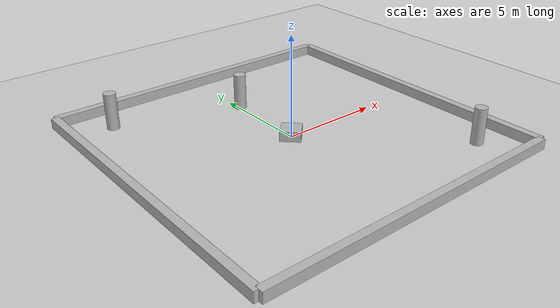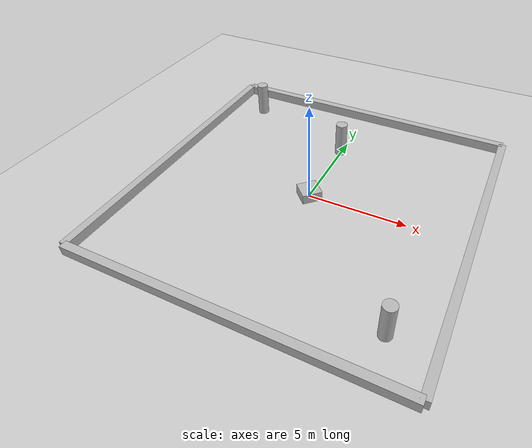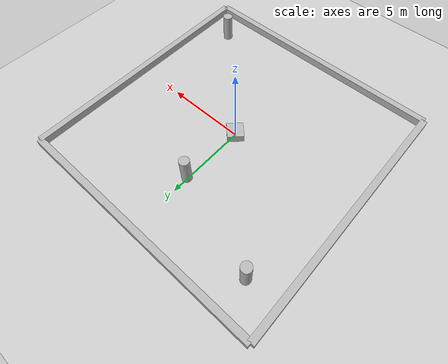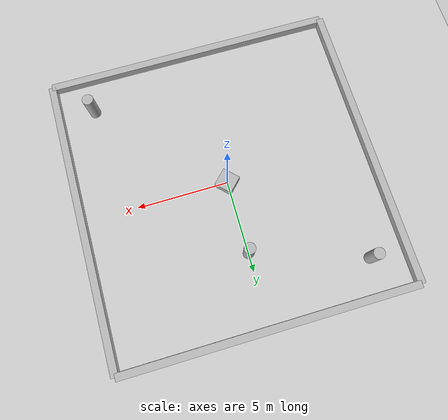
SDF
<?xml version="1.0"?>
<sdf version="1.6">
  <world name="square_dynamic">
    <!-- Ground plane -->
    <include>
      <uri>model://ground_plane</uri>
    </include>
    <include>
      <uri>model://sun</uri>
    </include>

    <!-- Static obstacles: 2D walls for the AGV -->
    <model name="wall_north">
      <pose>0 8 0.25 0 0 0</pose>
      <link name="link">
        <collision name="col"><geometry><box><size>16.0 0.4 0.5</size></box></geometry></collision>
        <visual name="vis"><geometry><box><size>16.0 0.4 0.5</size></box></geometry></visual>
      </link>
    </model>
    <model name="wall_south">
      <pose>0 -8 0.25 0 0 0</pose>
      <link name="link">
        <collision name="col"><geometry><box><size>16.0 0.4 0.5</size></box></geometry></collision>
        <visual name="vis"><geometry><box><size>16.0 0.4 0.5</size></box></geometry></visual>
      </link>
    </model>
    <model name="wall_east">
      <pose>8 0 0.25 0 0 1.5708</pose>
      <link name="link">
        <collision name="col"><geometry><box><size>16.0 0.4 0.5</size></box></geometry></collision>
        <visual name="vis"><geometry><box><size>16.0 0.4 0.5</size></box></geometry></visual>
      </link>
    </model>
    <model name="wall_west">
      <pose>-8 0 0.25 0 0 1.5708</pose>
      <link name="link">
        <collision name="col"><geometry><box><size>16.0 0.4 0.5</size></box></geometry></collision>
        <visual name="vis"><geometry><box><size>16.0 0.4 0.5</size></box></geometry></visual>
      </link>
    </model>

    <!-- Static box obstacle in the middle -->
    <model name="static_box">
      <pose>0 0 0.25 0 0 0.785398</pose>
      <link name="link">
        <collision name="col"><geometry><box><size>1.0 1.0 0.5</size></box></geometry></collision>
        <visual name="vis"><geometry><box><size>1.0 1.0 0.5</size></box></geometry></visual>
      </link>
    </model>

    <!-- Dynamic obstacles: people walking along paths -->
    <model name="person1">
      <pose>-6 6 0 0 0 0</pose>
      <link name="link">
        <collision name="col">
          <pose>0 0 0.9 0 0 0</pose>
          <geometry>
            <cylinder><radius>0.3</radius><length>1.8</length></cylinder>
          </geometry>
        </collision>
        <visual name="vis">
          <pose>0 0 1.0 0 0 0</pose>
          <geometry>
            <cylinder><radius>0.3</radius><length>1.8</length></cylinder>
          </geometry>
        </visual>
      </link>
      <plugin name="obstacle_motion" filename="libobstacle_path_plugin.so">
        <loop>1</loop>
        <velocity>0.6</velocity>
        <angular_velocity>0.8</angular_velocity>
        <path>
          <waypoint>-6 6 0</waypoint>
          <waypoint> 2 6 0</waypoint>
          <waypoint> 2 2 0</waypoint>
          <waypoint>-6 2 0</waypoint>
        </path>
      </plugin>
    </model>

    <model name="person2">
      <pose>6 -6 0 0 0 0</pose>
      <link name="link">
        <collision name="col">
          <pose>0 0 0.9 0 0 0</pose>
          <geometry>
            <cylinder><radius>0.3</radius><length>1.8</length></cylinder>
          </geometry>
        </collision>
        <visual name="vis">
          <pose>0 0 1.0 0 0 0</pose>
          <geometry>
            <cylinder><radius>0.3</radius><length>1.8</length></cylinder>
          </geometry>
        </visual>
      </link>
      <plugin name="obstacle_motion" filename="libobstacle_path_plugin.so">
        <loop>0</loop>
        <velocity>0.6</velocity>
        <angular_velocity>0.8</angular_velocity>
        <path>
          <waypoint>6 -6 0</waypoint>
          <waypoint>-6 -6 0</waypoint>
        </path>
      </plugin>
    </model>

    <model name="person3">
      <pose>0 4 0 0 0 0</pose>
      <link name="link">
        <collision name="col">
          <pose>0 0 0.9 0 0 0</pose>
          <geometry>
            <cylinder><radius>0.3</radius><length>1.8</length></cylinder>
          </geometry>
        </collision>
        <visual name="vis">
          <pose>0 0 1.0 0 0 0</pose>
          <geometry>
            <cylinder><radius>0.3</radius><length>1.8</length></cylinder>
          </geometry>
        </visual>
      </link>
      <plugin name="obstacle_motion" filename="libobstacle_path_plugin.so">
        <loop>0</loop>
        <velocity>0.4</velocity>
        <angular_velocity>0.8</angular_velocity>
        <path>
          <waypoint>-4 4 0</waypoint>
          <waypoint> 4 -4 0</waypoint>
        </path>
      </plugin>
    </model>
  </world>
</sdf>
